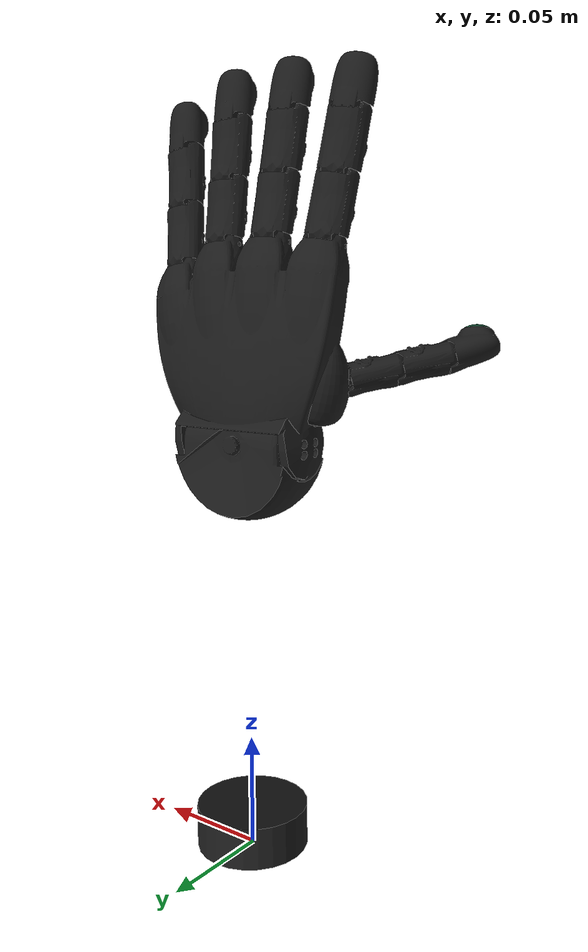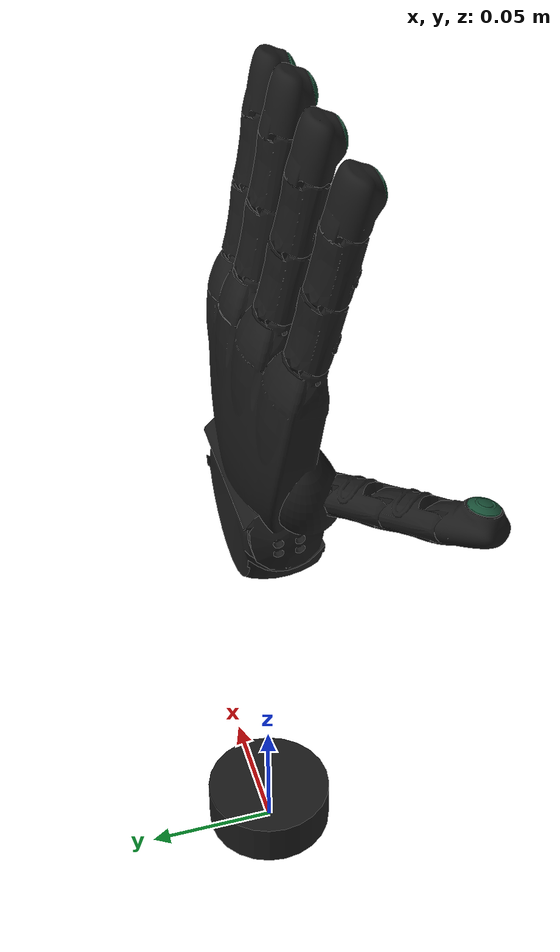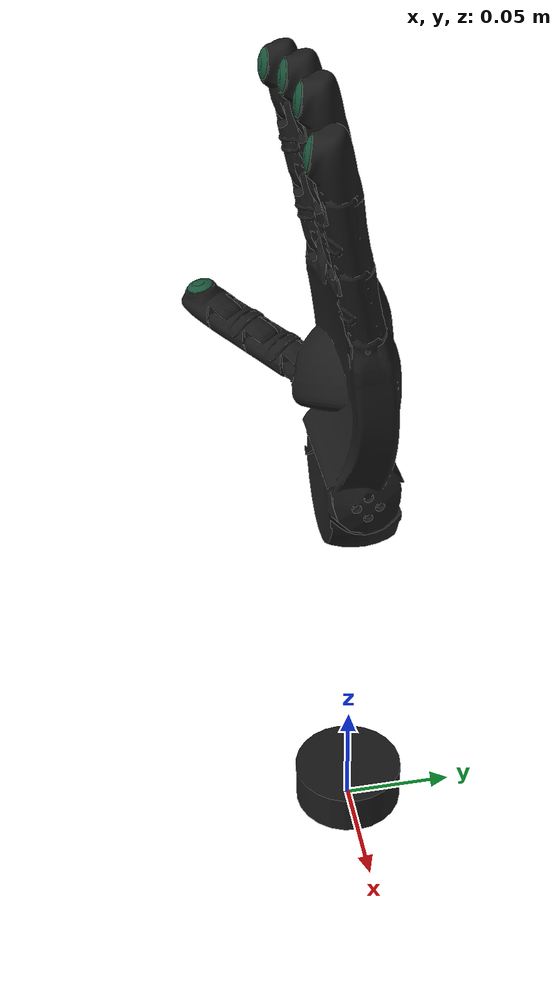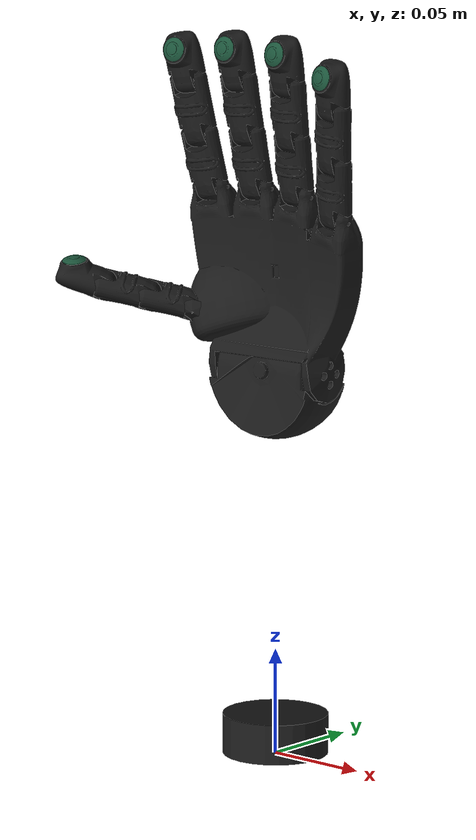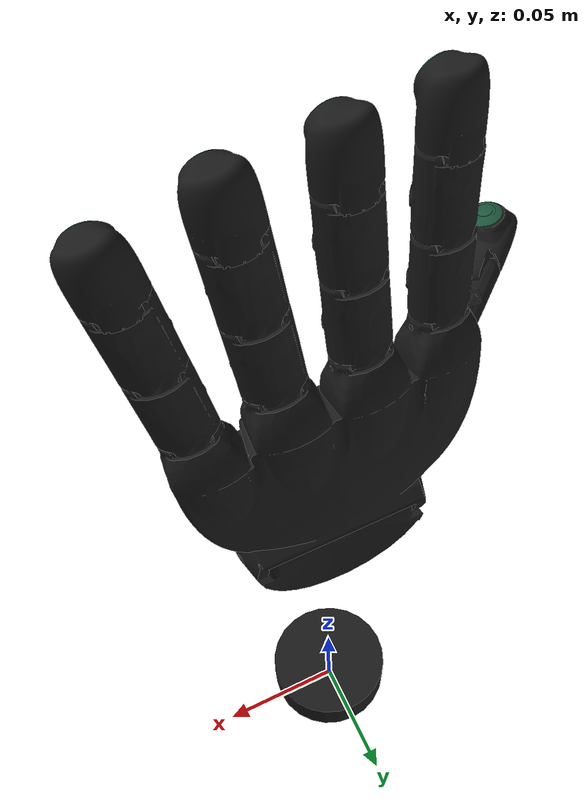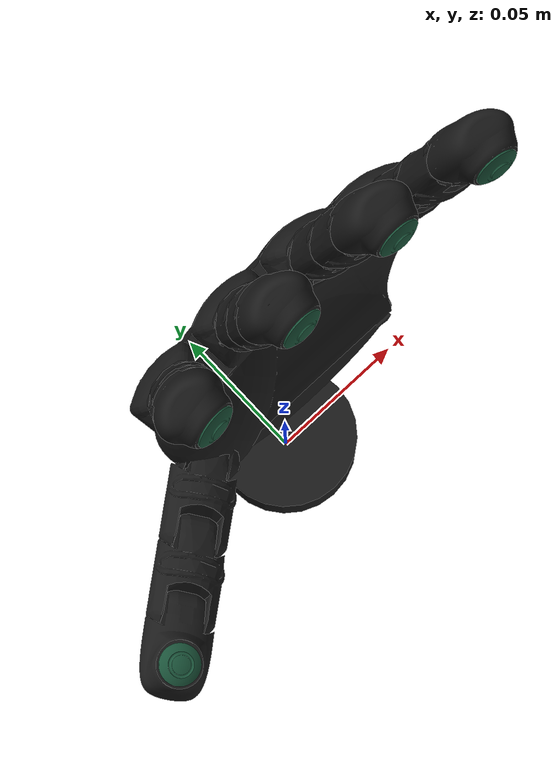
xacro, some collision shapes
<?xml version="1.0"?>
<robot xmlns:xacro="http://www.ros.org/wiki/xacro" name="rh8d">

  <xacro:arg name="side" default="left"/>
  <xacro:arg name="finger_coupling" default="mimic"/>
  <xacro:arg name="couple_ring_little" default="true"/>
  <xacro:arg name="use_gazebo" default="false"/>
  <xacro:arg name="use_ros2_control" default="true"/>
  <xacro:arg name="hardware_plugin" default="mock_components/GenericSystem"/>
  <xacro:arg name="controllers_file" default="controllers_file_not_set.yaml"/>

  <xacro:include filename="$(find seed_rh8d_description)/urdf/rh8d_macro.xacro"/>
  <xacro:include filename="$(find seed_rh8d_description)/urdf/rh8d.gazebo.xacro"/>
  <xacro:include filename="$(find seed_rh8d_description)/urdf/rh8d.ros2_control.xacro"/>

  <xacro:property name="side"   value="$(arg side)"/>
  <xacro:property name="prefix" value="${'l_' if side == 'left' else 'r_'}"/>

  <!-- For Gazebo the model is anchored to the world and base_link needs mass,
       otherwise sdformat drops the massless root and orphans the model. -->
  <xacro:if value="$(arg use_gazebo)">
    <link name="world"/>
    <joint name="world_to_base" type="fixed">
      <parent link="world"/>
      <child link="base_link"/>
    </joint>
    <link name="base_link">
      <inertial>
        <origin rpy="0 0 0" xyz="0 0 0"/>
        <mass value="0.05"/>
        <inertia ixx="1e-05" ixy="0.0" ixz="0.0" iyy="1e-05" iyz="0.0" izz="1e-05"/>
      </inertial>
    </link>
  </xacro:if>
  <xacro:unless value="$(arg use_gazebo)">
    <link name="base_link"/>
  </xacro:unless>

  <xacro:rh8d prefix="${prefix}" side="${side}" parent="base_link"
              finger_coupling="$(arg finger_coupling)"
              couple_ring_little="$(arg couple_ring_little)">
    <origin rpy="0 0 0" xyz="0 0 0"/>
  </xacro:rh8d>

  <xacro:if value="$(arg use_ros2_control)">
    <xacro:rh8d_ros2_control name="rh8d_${side}" prefix="${prefix}"
                             finger_coupling="$(arg finger_coupling)"
                             couple_ring_little="$(arg couple_ring_little)"
                             use_gazebo="$(arg use_gazebo)"
                             hardware_plugin="$(arg hardware_plugin)"/>
  </xacro:if>

  <xacro:if value="$(arg use_gazebo)">
    <xacro:rh8d_gazebo prefix="${prefix}" side="${side}"/>
    <xacro:if value="$(arg use_ros2_control)">
      <gazebo>
        <plugin filename="gz_ros2_control-system" name="gz_ros2_control::GazeboSimROS2ControlPlugin">
          <parameters>$(arg controllers_file)</parameters>
          <!-- velocity command = gain * position error * update_rate; the
               default 0.1 caps joint speeds well below the URDF limits -->
          <position_proportional_gain>0.3</position_proportional_gain>
        </plugin>
      </gazebo>
    </xacro:if>
  </xacro:if>

</robot>

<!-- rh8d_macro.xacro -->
<robot xmlns:xacro="http://www.ros.org/wiki/xacro">

  <xacro:include filename="$(find seed_rh8d_description)/urdf/rh8d_materials.xacro"/>
  <xacro:include filename="$(find seed_rh8d_description)/urdf/rh8d_finger.xacro"/>

  <xacro:macro name="rh8d" params="prefix side parent *origin finger_coupling:=mimic couple_ring_little:=true">

    <xacro:property name="reflect" value="${1 if side == 'left' else -1}"/>
    <xacro:property name="couple"  value="${couple_ring_little in [True, 'true', 'True', '1', 1]}"/>

    <!-- ======================= wrist chain ======================= -->
    <joint name="${prefix}wrist_rotation_joint" type="revolute">
      <xacro:insert_block name="origin"/>
      <parent link="${parent}"/>
      <child link="${prefix}forearm"/>
      <axis xyz="0 0 1"/>
      <limit effort="10" lower="${-pi/2}" upper="${pi/2}" velocity="6"/>
      <dynamics damping="1" friction="0.0"/>
    </joint>
    <link name="${prefix}forearm">
      <inertial>
        <origin rpy="0 0 0" xyz="0 0 0.07907642"/>
        <mass value="0.400"/>
        <inertia ixx="9.5374e-04" ixy="0.0" ixz="0.0" iyy="9.5374e-04" iyz="0.0" izz="2.4e-04"/>
      </inertial>
      <visual>
        <origin rpy="0 0 0" xyz="0 0 0"/>
        <geometry>
          <mesh filename="package://seed_rh8d_description/meshes/forearm.stl" scale="0.001 0.001 0.001"/>
        </geometry>
        <material name="rh8d_black"/>
      </visual>
      <collision>
        <origin rpy="0 0 0" xyz="0 0 0.01"/>
        <geometry>
          <cylinder length="0.019" radius="0.025"/>
        </geometry>
      </collision>
      <collision>
        <origin rpy="0 0 0" xyz="0 0 0"/>
        <geometry>
          <mesh filename="package://seed_rh8d_description/meshes/forearm_collision.stl" scale="0.001 0.001 0.001"/>
        </geometry>
      </collision>
    </link>

    <joint name="${prefix}wrist_adduction_joint" type="revolute">
      <origin rpy="${pi/2} 0 0" xyz="0 0 0.184"/>
      <parent link="${prefix}forearm"/>
      <child link="${prefix}palm_axis"/>
      <axis xyz="0 0 1"/>
      <limit effort="30" lower="${-pi/4}" upper="${pi/4}" velocity="6"/>
      <dynamics damping="1" friction="0.0"/>
    </joint>
    <link name="${prefix}palm_axis">
      <inertial>
        <origin rpy="0 0 0" xyz="0 0 0"/>
        <mass value="0.100"/>
        <inertia ixx="1.022e-05" ixy="0.0" ixz="0.0" iyy="2.764e-05" iyz="0.0" izz="2.764e-05"/>
      </inertial>
      <visual>
        <origin rpy="0 0 0" xyz="0 0 0"/>
        <geometry>
          <mesh filename="package://seed_rh8d_description/meshes/palm_axis_refac.stl" scale="0.001 0.001 0.001"/>
        </geometry>
        <material name="rh8d_black"/>
      </visual>
    </link>

    <joint name="${prefix}wrist_flexion_joint" type="revolute">
      <origin rpy="0 ${pi/2} 0" xyz="0 0 0"/>
      <parent link="${prefix}palm_axis"/>
      <child link="${prefix}palm"/>
      <axis xyz="0 0 1"/>
      <limit effort="30" lower="${-pi/4}" upper="${pi/4}" velocity="6"/>
      <dynamics damping="1" friction="0.0"/>
    </joint>
    <link name="${prefix}palm">
      <inertial>
        <origin rpy="0 0 0" xyz="0 0.030 0"/>
        <mass value="0.300"/>
        <inertia ixx="3.1096e-04" ixy="0.0" ixz="0.0" iyy="2.3191e-04" iyz="0.0" izz="1.0095e-04"/>
      </inertial>
      <visual>
        <origin rpy="0 0 0" xyz="0 0 0"/>
        <geometry>
          <mesh filename="package://seed_rh8d_description/meshes/high_res/${side}_palm_refac.stl" scale="0.001 0.001 0.001"/>
        </geometry>
        <material name="rh8d_black"/>
      </visual>
      <collision>
        <origin rpy="0 0 0" xyz="0 0 0"/>
        <geometry>
          <mesh filename="package://seed_rh8d_description/meshes/${side}_palm_collision.stl" scale="0.001 0.001 0.001"/>
        </geometry>
      </collision>
    </link>

    <!-- tool frame on the palm (grasp frame) -->
    <joint name="${prefix}tool0_joint" type="fixed">
      <origin rpy="${-0.06*reflect} ${0.04*reflect} -2.92922802"
              xyz="-0.0011171786 0.0818708881 ${0.0130285291*reflect}"/>
      <parent link="${prefix}palm"/>
      <child link="${prefix}tool0"/>
    </joint>
    <link name="${prefix}tool0"/>

    <!-- palm IR distance sensor frame -->
    <joint name="${prefix}palm_ir_joint" type="fixed">
      <origin rpy="0 0 ${pi}" xyz="-0.00030337 0.04498324 0"/>
      <parent link="${prefix}palm"/>
      <child link="${prefix}palm_ir"/>
    </joint>
    <link name="${prefix}palm_ir">
      <inertial>
        <origin rpy="0 0 0" xyz="0 0 0"/>
        <mass value="0.001"/>
        <inertia ixx="1e-06" ixy="0.0" ixz="0.0" iyy="1e-06" iyz="0.0" izz="1e-06"/>
      </inertial>
    </link>

    <xacro:property name="little_leader"
        value="${prefix + 'ring_proximal_joint' if (couple and finger_coupling == 'mimic') else ''}"/>

    <!-- ======================= thumb ======================= -->
    <!-- The thumb abduction mount is calibrated per side (not an exact mirror). -->
    <xacro:if value="${side == 'left'}">
      <xacro:rh8d_thumb prefix="${prefix}" coupling="${finger_coupling}"
                        mount_xyz="-0.0083412575 0.0157859987 -0.0379541955"
                        mount_rpy="0.60093862 -0.59510795 -2.8183247"
                        mount_axis="0 0 1"/>
    </xacro:if>
    <xacro:if value="${side == 'right'}">
      <xacro:rh8d_thumb prefix="${prefix}" coupling="${finger_coupling}"
                        mount_xyz="-0.0083412575 0.0157859987 0.0379541955"
                        mount_rpy="-2.54680616 -0.60124514 0.33418237"
                        mount_axis="0 0 -1"/>
    </xacro:if>

    <!-- ======================= fingers ======================= -->
    <xacro:rh8d_finger prefix="${prefix}" finger="index" coupling="${finger_coupling}"
                       mount_xyz="-0.0043044918 0.0812907302 ${-0.0367863551*reflect}"
                       mount_rpy="${0.08267713*reflect} ${-0.17715231*reflect} -2.93857995"/>
    <xacro:rh8d_finger prefix="${prefix}" finger="middle" coupling="${finger_coupling}"
                       mount_xyz="-0.0012008743 0.0828960623 ${-0.0118294206*reflect}"
                       mount_rpy="${0.02*reflect} ${-0.06*reflect} -2.92246721"/>
    <xacro:rh8d_finger prefix="${prefix}" finger="ring" coupling="${finger_coupling}"
                       mount_xyz="-0.0011171786 0.0818708881 ${0.0130285291*reflect}"
                       mount_rpy="${-0.06*reflect} ${0.04*reflect} -2.92922802"/>
    <xacro:rh8d_finger prefix="${prefix}" finger="little" coupling="${finger_coupling}"
                       leader="${little_leader}"
                       mount_xyz="-0.0031705239 0.0731417977 ${0.0376310382*reflect}"
                       mount_rpy="${-0.14*reflect} ${0.17*reflect} -2.95156384"/>

  </xacro:macro>

</robot>

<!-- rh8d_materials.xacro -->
<robot xmlns:xacro="http://www.ros.org/wiki/xacro">

  <material name="rh8d_black">
    <color rgba="0.1 0.1 0.1 1.0"/>
  </material>
  <material name="rh8d_sensor_green">
    <color rgba="0.1 0.3215686274509804 0.2215686274509803 1.0"/>
  </material>

</robot>

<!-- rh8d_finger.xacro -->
<robot xmlns:xacro="http://www.ros.org/wiki/xacro">

  <!-- Shared phalanx dimensions (identical for index/middle/ring/little). -->
  <xacro:property name="phalanx_pitch"     value="0.0258749732"/>
  <xacro:property name="finger_prox_upper" value="1.57"/>
  <xacro:property name="finger_med_upper"  value="1.57"/>
  <xacro:property name="finger_dist_upper" value="1.0"/>
  <!-- Follower ratios in 'mimic' mode: scaled so every phalanx reaches its own
       upper limit exactly when the leader reaches its upper limit. -->
  <xacro:property name="finger_med_mult"   value="${finger_med_upper / finger_prox_upper}"/>
  <xacro:property name="finger_dist_mult"  value="${finger_dist_upper / finger_prox_upper}"/>
  <!-- Actuator strength/speed (tuned up from the sluggish NICOL originals:
       effort 20 / velocity 2 left the fingers slow and the thumb prone to
       sticking against the palm until jostled). -->
  <xacro:property name="phalanx_effort"    value="30"/>
  <xacro:property name="phalanx_velocity"  value="8"/>
  <xacro:property name="phalanx_lower"     value="-0.05"/>

  <xacro:macro name="rh8d_phalanx_link" params="name mass com_y ixx iyy izz cyl_len cyl_rad cyl_y sph_y">
    <link name="${name}">
      <inertial>
        <origin rpy="0 0 0" xyz="0 ${com_y} 0"/>
        <mass value="${mass}"/>
        <inertia ixx="${ixx}" ixy="0.0" ixz="0.0" iyy="${iyy}" iyz="0.0" izz="${izz}"/>
      </inertial>
      <visual>
        <origin rpy="0 0 0" xyz="0 0 0"/>
        <geometry>
          <mesh filename="package://seed_rh8d_description/meshes/phalanx_refac.stl" scale="0.001 0.001 0.001"/>
        </geometry>
        <material name="rh8d_black"/>
      </visual>
      <collision>
        <origin rpy="${pi/2} 0 0" xyz="0 ${cyl_y} 0"/>
        <geometry>
          <cylinder length="${cyl_len}" radius="${cyl_rad}"/>
        </geometry>
      </collision>
      <collision>
        <origin rpy="0 0 0" xyz="0 ${sph_y} 0"/>
        <geometry>
          <sphere radius="${cyl_rad}"/>
        </geometry>
      </collision>
    </link>
  </xacro:macro>

  <xacro:macro name="rh8d_tip_link" params="name">
    <link name="${name}">
      <inertial>
        <origin rpy="0 0 0" xyz="0 -0.010 0"/>
        <mass value="0.01349695"/>
        <inertia ixx="6.4e-07" ixy="0.0" ixz="0.0" iyy="3.8e-07" iyz="0.0" izz="6.4e-07"/>
      </inertial>
      <visual>
        <origin rpy="0 0 0" xyz="0 0 0"/>
        <geometry>
          <mesh filename="package://seed_rh8d_description/meshes/high_res/tip_refac.stl" scale="0.001 0.001 0.001"/>
        </geometry>
        <material name="rh8d_black"/>
      </visual>
      <collision>
        <origin rpy="0 0 0" xyz="0 0 0"/>
        <geometry>
          <mesh filename="package://seed_rh8d_description/meshes/tip_refac.stl" scale="0.001 0.001 0.001"/>
        </geometry>
      </collision>
    </link>
  </xacro:macro>

  <!-- Fingertip 3D force sensor pad, mounted on a fixed joint so a Gazebo
       force_torque sensor can be attached to it (the joint is preserved from
       lumping in rh8d.gazebo.xacro). -->
  <xacro:macro name="rh8d_fingertip_sensor" params="prefix finger tip_link">
    <joint name="${prefix}${finger}_fingertip_joint" type="fixed">
      <origin rpy="0 0 -0.35" xyz="0.00674 -0.01638 0"/>
      <parent link="${tip_link}"/>
      <child link="${prefix}${finger}_fingertip"/>
    </joint>
    <link name="${prefix}${finger}_fingertip">
      <inertial>
        <origin rpy="0 0 0" xyz="0.0005 0 0"/>
        <mass value="0.0015"/>
        <inertia ixx="2.0e-08" ixy="0.0" ixz="0.0" iyy="1.0e-08" iyz="0.0" izz="1.0e-08"/>
      </inertial>
      <visual>
        <origin rpy="0 0 0" xyz="0 0 0"/>
        <geometry>
          <mesh filename="package://seed_rh8d_description/meshes/high_res/sensor_refac.stl" scale="0.001 0.001 0.001"/>
        </geometry>
        <material name="rh8d_sensor_green"/>
      </visual>
      <collision>
        <origin rpy="0 0 0" xyz="0 0 0"/>
        <geometry>
          <mesh filename="package://seed_rh8d_description/meshes/sensor_refac.stl" scale="0.001 0.001 0.001"/>
        </geometry>
      </collision>
    </link>
  </xacro:macro>

  <xacro:macro name="rh8d_finger" params="prefix finger mount_xyz mount_rpy coupling leader:=''">
    <xacro:property name="prox_joint" value="${prefix}${finger}_proximal_joint"/>
    <xacro:property name="mimic_base" value="${leader if leader != '' else prox_joint}"/>

    <joint name="${prox_joint}" type="revolute">
      <origin rpy="${mount_rpy}" xyz="${mount_xyz}"/>
      <parent link="${prefix}palm"/>
      <child link="${prefix}${finger}_proximal"/>
      <axis xyz="0 0 1"/>
      <limit effort="${phalanx_effort}" lower="${phalanx_lower}" upper="${finger_prox_upper}" velocity="${phalanx_velocity}"/>
      <dynamics damping="0.02" friction="0.0"/>
      <xacro:if value="${coupling == 'mimic' and leader != ''}">
        <mimic joint="${leader}" multiplier="1.0" offset="0.0"/>
      </xacro:if>
    </joint>
    <xacro:rh8d_phalanx_link name="${prefix}${finger}_proximal" mass="0.04596550" com_y="-0.0125"
                             ixx="3.03e-06" iyy="1.27e-06" izz="3.03e-06"
                             cyl_len="0.0162" cyl_rad="0.008" cyl_y="-0.0115" sph_y="-0.0036"/>

    <joint name="${prefix}${finger}_medial_joint" type="revolute">
      <origin rpy="0 0 -0.015" xyz="0 -${phalanx_pitch} 0"/>
      <parent link="${prefix}${finger}_proximal"/>
      <child link="${prefix}${finger}_medial"/>
      <axis xyz="0 0 1"/>
      <limit effort="${phalanx_effort}" lower="${phalanx_lower}" upper="${finger_med_upper}" velocity="${phalanx_velocity}"/>
      <dynamics damping="0.01" friction="0.0"/>
      <xacro:if value="${coupling == 'mimic'}">
        <mimic joint="${mimic_base}" multiplier="${finger_med_mult}" offset="0.0"/>
      </xacro:if>
    </joint>
    <xacro:rh8d_phalanx_link name="${prefix}${finger}_medial" mass="0.02596550" com_y="-0.0125"
                             ixx="1.71e-06" iyy="7.1e-07" izz="1.71e-06"
                             cyl_len="0.0162" cyl_rad="0.008" cyl_y="-0.0115" sph_y="-0.0036"/>

    <joint name="${prefix}${finger}_distal_joint" type="revolute">
      <origin rpy="0 0 0" xyz="0 -${phalanx_pitch} 0"/>
      <parent link="${prefix}${finger}_medial"/>
      <child link="${prefix}${finger}_distal"/>
      <axis xyz="0 0 1"/>
      <limit effort="${phalanx_effort}" lower="${phalanx_lower}" upper="${finger_dist_upper}" velocity="${phalanx_velocity}"/>
      <dynamics damping="0.001" friction="0.0"/>
      <xacro:if value="${coupling == 'mimic'}">
        <mimic joint="${mimic_base}" multiplier="${finger_dist_mult}" offset="0.0"/>
      </xacro:if>
    </joint>
    <xacro:rh8d_tip_link name="${prefix}${finger}_distal"/>

    <xacro:rh8d_fingertip_sensor prefix="${prefix}" finger="${finger}" tip_link="${prefix}${finger}_distal"/>
  </xacro:macro>

  <!--
    Thumb: abduction (own actuator) + three flexion phalanges driven by one
    tendon. Abduction mount is calibrated per side and passed in by the caller.
  -->
  <xacro:property name="thumb_prox_upper" value="0.8"/>
  <xacro:property name="thumb_med_upper"  value="1.57"/>
  <xacro:property name="thumb_dist_upper" value="0.4"/>
  <xacro:property name="thumb_med_mult"   value="${thumb_med_upper / thumb_prox_upper}"/>
  <xacro:property name="thumb_dist_mult"  value="${thumb_dist_upper / thumb_prox_upper}"/>

  <xacro:macro name="rh8d_thumb" params="prefix mount_xyz mount_rpy mount_axis coupling leader:=''">
    <xacro:property name="prox_joint" value="${prefix}thumb_proximal_joint"/>
    <xacro:property name="mimic_base" value="${leader if leader != '' else prox_joint}"/>

    <joint name="${prefix}thumb_adduction_joint" type="revolute">
      <origin rpy="${mount_rpy}" xyz="${mount_xyz}"/>
      <parent link="${prefix}palm"/>
      <child link="${prefix}thumb_base"/>
      <axis xyz="${mount_axis}"/>
      <limit effort="${phalanx_effort}" lower="-0.6" upper="${pi/4}" velocity="${phalanx_velocity}"/>
      <dynamics damping="0.1" friction="0.0"/>
    </joint>
    <link name="${prefix}thumb_base">
      <inertial>
        <origin rpy="0 0 0" xyz="0 0 0.01537512"/>
        <mass value="0.020"/>
        <inertia ixx="2.06e-06" ixy="0.0" ixz="0.0" iyy="2.06e-06" iyz="0.0" izz="9.6e-07"/>
      </inertial>
      <visual>
        <origin rpy="0 0 0" xyz="0 0 0"/>
        <geometry>
          <mesh filename="package://seed_rh8d_description/meshes/thumb_base_refac.stl" scale="0.001 0.001 0.001"/>
        </geometry>
        <material name="rh8d_black"/>
      </visual>
    </link>

    <joint name="${prox_joint}" type="revolute">
      <origin rpy="${pi/2} -1.01753528 ${-pi/2}" xyz="0 -0.0111644427 0.005490292"/>
      <parent link="${prefix}thumb_base"/>
      <child link="${prefix}thumb_proximal"/>
      <axis xyz="0 0 1"/>
      <limit effort="${phalanx_effort}" lower="${phalanx_lower}" upper="${thumb_prox_upper}" velocity="${phalanx_velocity}"/>
      <dynamics damping="0.01" friction="0.0"/>
    </joint>
    <link name="${prefix}thumb_proximal">
      <inertial>
        <origin rpy="0 0 0" xyz="0 -0.011 0"/>
        <mass value="0.03767300"/>
        <inertia ixx="2.03e-06" ixy="0.0" ixz="0.0" iyy="1.03e-06" iyz="0.0" izz="2.03e-06"/>
      </inertial>
      <visual>
        <origin rpy="0 0 0" xyz="0 0 0"/>
        <geometry>
          <mesh filename="package://seed_rh8d_description/meshes/thumb_phalanx_refac.stl" scale="0.001 0.001 0.001"/>
        </geometry>
        <material name="rh8d_black"/>
      </visual>
      <collision>
        <origin rpy="${pi/2} 0 0" xyz="0 -0.015 0"/>
        <geometry>
          <cylinder length="0.010" radius="0.0050"/>
        </geometry>
      </collision>
    </link>

    <joint name="${prefix}thumb_medial_joint" type="revolute">
      <origin rpy="0 0 0" xyz="0 -0.0215859928 0"/>
      <parent link="${prefix}thumb_proximal"/>
      <child link="${prefix}thumb_medial"/>
      <axis xyz="0 0 1"/>
      <limit effort="${phalanx_effort}" lower="${phalanx_lower}" upper="${thumb_med_upper}" velocity="${phalanx_velocity}"/>
      <dynamics damping="0.01" friction="0.0"/>
      <xacro:if value="${coupling == 'mimic'}">
        <mimic joint="${mimic_base}" multiplier="${thumb_med_mult}" offset="0.0"/>
      </xacro:if>
    </joint>
    <link name="${prefix}thumb_medial">
      <inertial>
        <origin rpy="0 0 0" xyz="0 -0.011 0"/>
        <mass value="0.03767300"/>
        <inertia ixx="2.03e-06" ixy="0.0" ixz="0.0" iyy="1.03e-06" iyz="0.0" izz="2.03e-06"/>
      </inertial>
      <visual>
        <origin rpy="0 0 0" xyz="0 0 0"/>
        <geometry>
          <mesh filename="package://seed_rh8d_description/meshes/thumb_phalanx_refac.stl" scale="0.001 0.001 0.001"/>
        </geometry>
        <material name="rh8d_black"/>
      </visual>
      <collision>
        <origin rpy="${pi/2} 0 0" xyz="0 -0.009 0"/>
        <geometry>
          <cylinder length="0.011" radius="0.0074"/>
        </geometry>
      </collision>
      <collision>
        <origin rpy="0 0 0" xyz="0 -0.004 0"/>
        <geometry>
          <sphere radius="0.0074"/>
        </geometry>
      </collision>
    </link>

    <joint name="${prefix}thumb_distal_joint" type="revolute">
      <origin rpy="0 0 0.078" xyz="0 -0.0215859928 0"/>
      <parent link="${prefix}thumb_medial"/>
      <child link="${prefix}thumb_distal"/>
      <axis xyz="0 0 1"/>
      <limit effort="${phalanx_effort}" lower="${phalanx_lower}" upper="${thumb_dist_upper}" velocity="${phalanx_velocity}"/>
      <dynamics damping="0.001" friction="0.0"/>
      <xacro:if value="${coupling == 'mimic'}">
        <mimic joint="${mimic_base}" multiplier="${thumb_dist_mult}" offset="0.0"/>
      </xacro:if>
    </joint>
    <xacro:rh8d_tip_link name="${prefix}thumb_distal"/>

    <xacro:rh8d_fingertip_sensor prefix="${prefix}" finger="thumb" tip_link="${prefix}thumb_distal"/>
  </xacro:macro>

</robot>
